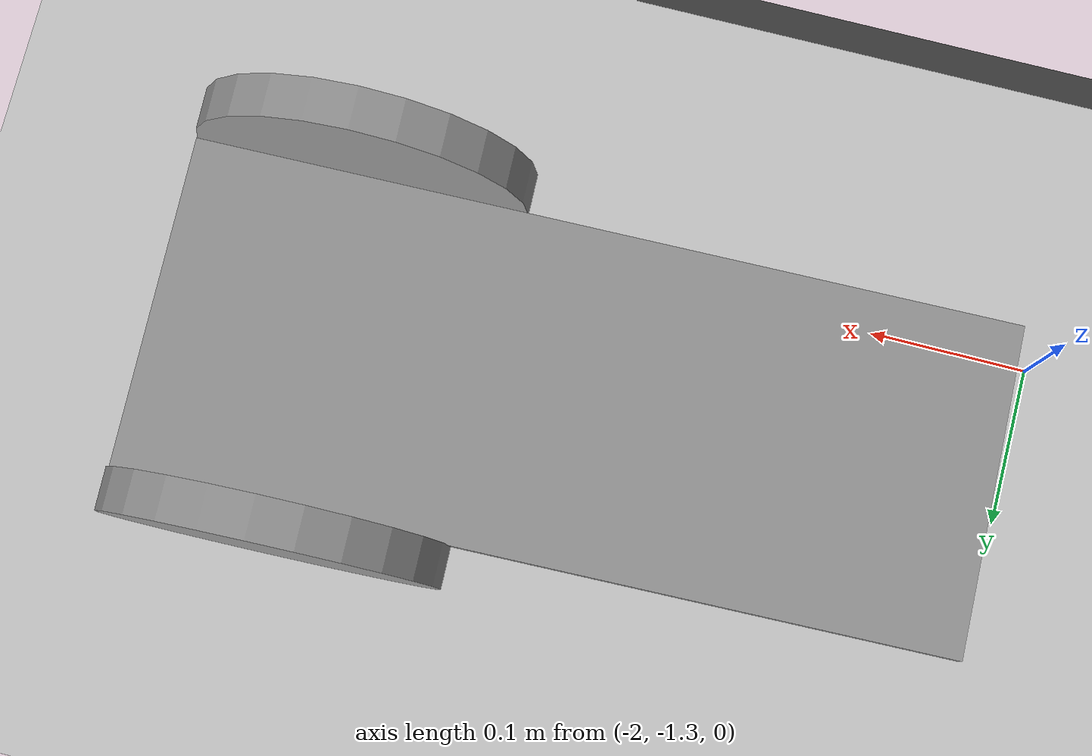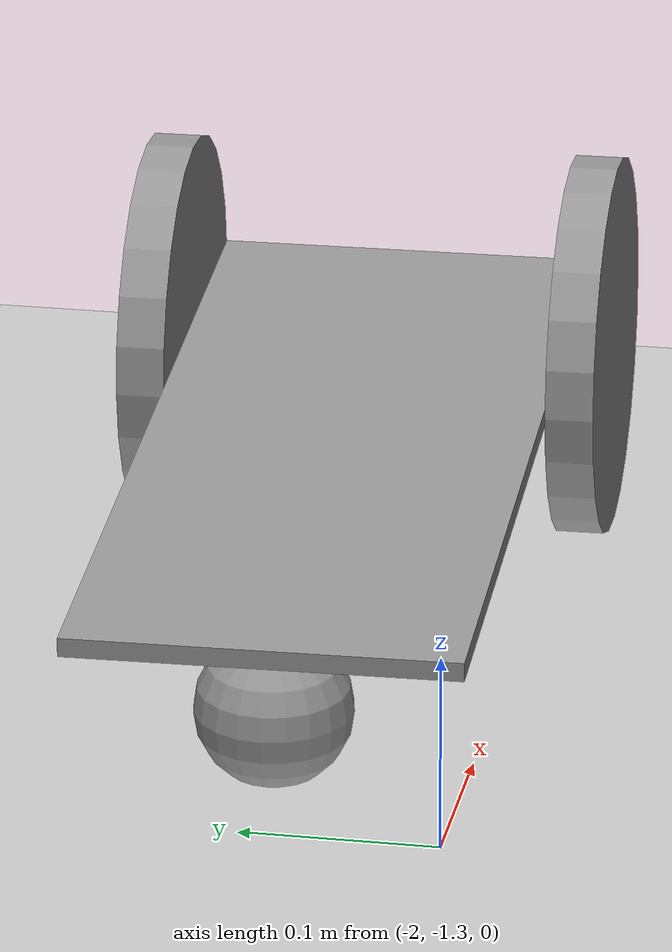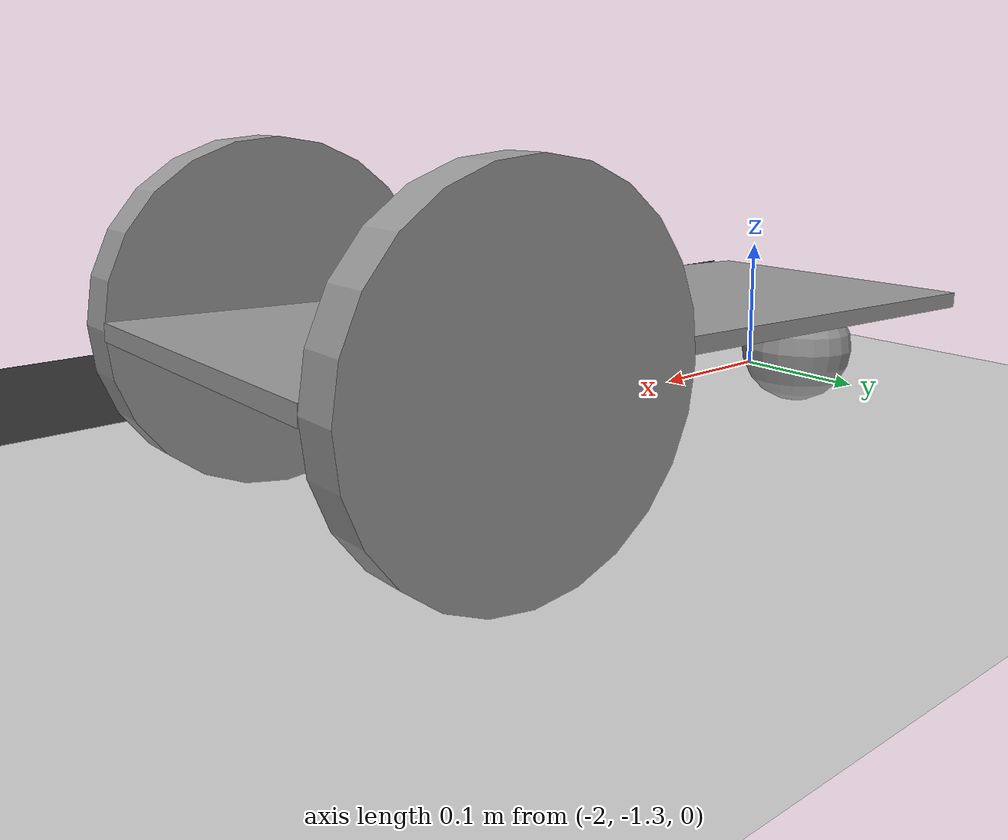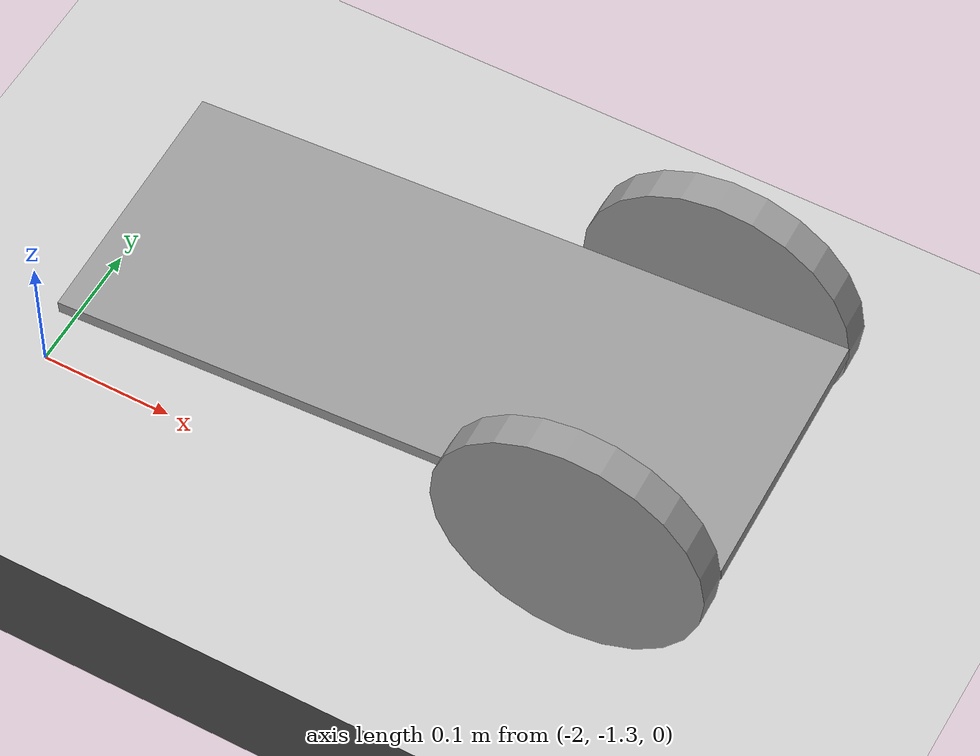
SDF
<sdf version="1.6">
 <world name="default">
  <model name="ground_plane">
   <static>1</static>
   <link name="link">
    <collision name="collision">
     <geometry><plane><normal>0 0 1</normal><size>100 100</size></plane></geometry>
     <surface>
      <contact><collide_bitmask>65535</collide_bitmask></contact>
      <friction><ode><mu>100</mu><mu2>50</mu2></ode></friction>
     </surface>
    </collision>
    <visual name="visual">
     <cast_shadows>0</cast_shadows>
     <geometry><plane><normal>0 0 1</normal><size>100 100</size></plane></geometry>
     <material>
      <script><uri>file://media/materials/scripts/gazebo.material</uri><name>Gazebo/Grey</name></script>
     </material>
    </visual>
   </link>
  </model>
  <model name="asphalt_plane">
   <static>1</static>
   <link name="link">
    <collision name="collision"><geometry><box><size>20 20 0.1</size></box></geometry></collision>
    <visual name="visual">
     <cast_shadows>0</cast_shadows>
     <geometry><box><size>20 20 0.1</size></box></geometry>
     <material>
      <script>
       <uri>model://asphalt_plane/materials/scripts</uri>
       <uri>model://asphalt_plane/materials/textures</uri>
       <name>vrc/asphalt</name>
      </script>
     </material>
    </visual>
   </link>
   <pose>-0.35184 -19.1986 0 0 -0 0</pose>
  </model>
  <model name="BaseModel">
   <link name="link_0_clone">
    <inertial>
     <mass>1</mass>
     <inertia><ixx>0.145833</ixx><ixy>0</ixy><ixz>0</ixz><iyy>0.145833</iyy><iyz>0</iyz><izz>0.125</izz></inertia>
    </inertial>
    <pose>0.282441 0.145774 0.01125 1.57 -0 0</pose>
    <visual name="visual">
     <geometry><cylinder><radius>0.1</radius><length>0.025</length></cylinder></geometry>
     <material>
      <lighting>1</lighting>
      <script><uri>file://media/materials/scripts/gazebo.material</uri><name>Gazebo/Grey</name></script>
      <shader type="pixel"><normal_map>__default__</normal_map></shader>
      <ambient>0.3 0.3 0.3 1</ambient>
      <diffuse>0.7 0.7 0.7 1</diffuse>
      <specular>0.01 0.01 0.01 1</specular>
      <emissive>0 0 0 1</emissive>
     </material>
    </visual>
    <collision name="collision">
     <geometry><cylinder><radius>0.1</radius><length>0.025</length></cylinder></geometry>
     <surface>
      <friction>
       <ode><mu>1</mu><mu2>1</mu2><fdir1>0 0 0</fdir1><slip1>0</slip1><slip2>0</slip2></ode>
       <torsional>
        <coefficient>1</coefficient>
        <patch_radius>0</patch_radius>
        <surface_radius>0</surface_radius>
        <use_patch_radius>1</use_patch_radius>
        <ode><slip>0</slip></ode>
       </torsional>
      </friction>
      <bounce><restitution_coefficient>0</restitution_coefficient><threshold>1e+06</threshold></bounce>
      <contact>
       <collide_without_contact>0</collide_without_contact>
       <collide_without_contact_bitmask>1</collide_without_contact_bitmask>
       <collide_bitmask>1</collide_bitmask>
       <ode>
        <soft_cfm>0</soft_cfm>
        <soft_erp>0.2</soft_erp>
        <kp>1e+13</kp>
        <kd>1</kd>
        <max_vel>0.01</max_vel>
        <min_depth>0</min_depth>
       </ode>
       <bullet>
        <split_impulse>1</split_impulse>
        <split_impulse_penetration_threshold>-0.01</split_impulse_penetration_threshold>
        <soft_cfm>0</soft_cfm>
        <soft_erp>0.2</soft_erp>
        <kp>1e+13</kp>
        <kd>1</kd>
       </bullet>
      </contact>
     </surface>
    </collision>
   </link>
   <link name="link_0_clone_0">
    <inertial>
     <mass>1</mass>
     <inertia><ixx>0.145833</ixx><ixy>0</ixy><ixz>0</ixz><iyy>0.145833</iyy><iyz>0</iyz><izz>0.125</izz></inertia>
    </inertial>
    <pose>0.282441 0.370933 0.01125 1.57 -0 0</pose>
    <visual name="visual">
     <geometry><cylinder><radius>0.1</radius><length>0.025</length></cylinder></geometry>
     <material>
      <lighting>1</lighting>
      <script><uri>file://media/materials/scripts/gazebo.material</uri><name>Gazebo/Grey</name></script>
      <shader type="pixel"><normal_map>__default__</normal_map></shader>
      <ambient>0.3 0.3 0.3 1</ambient>
      <diffuse>0.7 0.7 0.7 1</diffuse>
      <specular>0.01 0.01 0.01 1</specular>
      <emissive>0 0 0 1</emissive>
     </material>
    </visual>
    <collision name="collision">
     <geometry><cylinder><radius>0.1</radius><length>0.025</length></cylinder></geometry>
     <surface>
      <friction>
       <ode><mu>1</mu><mu2>1</mu2><fdir1>0 0 0</fdir1><slip1>0</slip1><slip2>0</slip2></ode>
       <torsional>
        <coefficient>1</coefficient>
        <patch_radius>0</patch_radius>
        <surface_radius>0</surface_radius>
        <use_patch_radius>1</use_patch_radius>
        <ode><slip>0</slip></ode>
       </torsional>
      </friction>
      <bounce><restitution_coefficient>0</restitution_coefficient><threshold>1e+06</threshold></bounce>
      <contact>
       <collide_without_contact>0</collide_without_contact>
       <collide_without_contact_bitmask>1</collide_without_contact_bitmask>
       <collide_bitmask>1</collide_bitmask>
       <ode>
        <soft_cfm>0</soft_cfm>
        <soft_erp>0.2</soft_erp>
        <kp>1e+13</kp>
        <kd>1</kd>
        <max_vel>0.01</max_vel>
        <min_depth>0</min_depth>
       </ode>
       <bullet>
        <split_impulse>1</split_impulse>
        <split_impulse_penetration_threshold>-0.01</split_impulse_penetration_threshold>
        <soft_cfm>0</soft_cfm>
        <soft_erp>0.2</soft_erp>
        <kp>1e+13</kp>
        <kd>1</kd>
       </bullet>
      </contact>
     </surface>
    </collision>
   </link>
   <link name="link_1_clone">
    <inertial>
     <mass>1</mass>
     <inertia><ixx>0.1</ixx><ixy>0</ixy><ixz>0</ixz><iyy>0.1</iyy><iyz>0</iyz><izz>0.1</izz></inertia>
    </inertial>
    <pose>-0.077559 0.258354 -0.03375 0 -0 0</pose>
    <visual name="visual">
     <geometry><sphere><radius>0.04</radius></sphere></geometry>
     <material>
      <lighting>1</lighting>
      <script><uri>file://media/materials/scripts/gazebo.material</uri><name>Gazebo/Grey</name></script>
      <shader type="pixel"><normal_map>__default__</normal_map></shader>
      <ambient>0.3 0.3 0.3 1</ambient>
      <diffuse>0.7 0.7 0.7 1</diffuse>
      <specular>0.01 0.01 0.01 1</specular>
      <emissive>0 0 0 1</emissive>
     </material>
    </visual>
    <collision name="collision">
     <geometry><sphere><radius>0.04</radius></sphere></geometry>
     <surface>
      <friction>
       <ode><mu>1</mu><mu2>1</mu2><fdir1>0 0 0</fdir1><slip1>0</slip1><slip2>0</slip2></ode>
       <torsional>
        <coefficient>1</coefficient>
        <patch_radius>0</patch_radius>
        <surface_radius>0</surface_radius>
        <use_patch_radius>1</use_patch_radius>
        <ode><slip>0</slip></ode>
       </torsional>
      </friction>
      <bounce><restitution_coefficient>0</restitution_coefficient><threshold>1e+06</threshold></bounce>
      <contact>
       <collide_without_contact>0</collide_without_contact>
       <collide_without_contact_bitmask>1</collide_without_contact_bitmask>
       <collide_bitmask>1</collide_bitmask>
       <ode>
        <soft_cfm>0</soft_cfm>
        <soft_erp>0.2</soft_erp>
        <kp>1e+13</kp>
        <kd>1</kd>
        <max_vel>0.01</max_vel>
        <min_depth>0</min_depth>
       </ode>
       <bullet>
        <split_impulse>1</split_impulse>
        <split_impulse_penetration_threshold>-0.01</split_impulse_penetration_threshold>
        <soft_cfm>0</soft_cfm>
        <soft_erp>0.2</soft_erp>
        <kp>1e+13</kp>
        <kd>1</kd>
       </bullet>
      </contact>
     </surface>
    </collision>
   </link>
   <link name="link_2_clone">
    <inertial>
     <mass>1</mass>
     <inertia>
      <ixx>0.166667</ixx>
      <ixy>0</ixy>
      <ixz>0</ixz>
      <iyy>0.166667</iyy>
      <iyz>0</iyz>
      <izz>0.166667</izz>
     </inertia>
    </inertial>
    <pose>0.132441 0.258354 0.01125 0 -0 0</pose>
    <visual name="visual">
     <geometry><box><size>0.5 0.2 0.01</size></box></geometry>
     <material>
      <lighting>1</lighting>
      <script><uri>file://media/materials/scripts/gazebo.material</uri><name>Gazebo/Grey</name></script>
      <shader type="pixel"><normal_map>__default__</normal_map></shader>
      <ambient>0.3 0.3 0.3 1</ambient>
      <diffuse>0.7 0.7 0.7 1</diffuse>
      <specular>0.01 0.01 0.01 1</specular>
      <emissive>0 0 0 1</emissive>
     </material>
    </visual>
    <collision name="collision">
     <geometry><box><size>0.5 0.2 0.01</size></box></geometry>
     <surface>
      <friction>
       <ode><mu>1</mu><mu2>1</mu2><fdir1>0 0 0</fdir1><slip1>0</slip1><slip2>0</slip2></ode>
       <torsional>
        <coefficient>1</coefficient>
        <patch_radius>0</patch_radius>
        <surface_radius>0</surface_radius>
        <use_patch_radius>1</use_patch_radius>
        <ode><slip>0</slip></ode>
       </torsional>
      </friction>
      <bounce><restitution_coefficient>0</restitution_coefficient><threshold>1e+06</threshold></bounce>
      <contact>
       <collide_without_contact>0</collide_without_contact>
       <collide_without_contact_bitmask>1</collide_without_contact_bitmask>
       <collide_bitmask>1</collide_bitmask>
       <ode>
        <soft_cfm>0</soft_cfm>
        <soft_erp>0.2</soft_erp>
        <kp>1e+13</kp>
        <kd>1</kd>
        <max_vel>0.01</max_vel>
        <min_depth>0</min_depth>
       </ode>
       <bullet>
        <split_impulse>1</split_impulse>
        <split_impulse_penetration_threshold>-0.01</split_impulse_penetration_threshold>
        <soft_cfm>0</soft_cfm>
        <soft_erp>0.2</soft_erp>
        <kp>1e+13</kp>
        <kd>1</kd>
       </bullet>
      </contact>
     </surface>
    </collision>
   </link>
   <joint name="link_2_clone_JOINT_0" type="revolute">
    <parent>link_2_clone</parent>
    <child>link_0_clone_0</child>
    <axis>
     <xyz>1 0 0</xyz>
     <use_parent_model_frame>0</use_parent_model_frame>
     <limit>
      <lower>-1.79769e+308</lower>
      <upper>1.79769e+308</upper>
      <effort>-1</effort>
      <velocity>-1</velocity>
     </limit>
     <dynamics>
      <spring_reference>0</spring_reference>
      <spring_stiffness>0</spring_stiffness>
      <damping>0</damping>
     </dynamics>
    </axis>
    <physics>
     <ode><limit><cfm>0</cfm><erp>0.2</erp></limit><suspension><cfm>0</cfm><erp>0.2</erp></suspension></ode>
    </physics>
   </joint>
   <joint name="link_2_clone_JOINT_1" type="revolute">
    <parent>link_2_clone</parent>
    <child>link_0_clone</child>
    <axis>
     <xyz>1 0 0</xyz>
     <use_parent_model_frame>0</use_parent_model_frame>
     <limit>
      <lower>-1.79769e+308</lower>
      <upper>1.79769e+308</upper>
      <effort>-1</effort>
      <velocity>-1</velocity>
     </limit>
     <dynamics>
      <spring_reference>0</spring_reference>
      <spring_stiffness>0</spring_stiffness>
      <damping>0</damping>
     </dynamics>
    </axis>
    <physics>
     <ode><limit><cfm>0</cfm><erp>0.2</erp></limit><suspension><cfm>0</cfm><erp>0.2</erp></suspension></ode>
    </physics>
   </joint>
   <joint name="link_2_clone_JOINT_2" type="ball">
    <parent>link_2_clone</parent>
    <child>link_1_clone</child>
    <physics>
     <ode><limit><cfm>0</cfm><erp>0.2</erp></limit><suspension><cfm>0</cfm><erp>0.2</erp></suspension></ode>
    </physics>
   </joint>
   <static>0</static>
   <pose>-1.85518 -1.46288 0.076844 0.000801 -0.041788 0.026006</pose>
  </model>
 </world>
</sdf>
